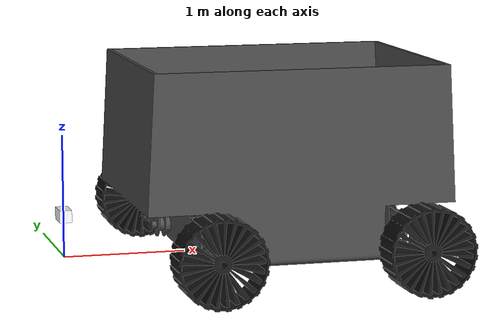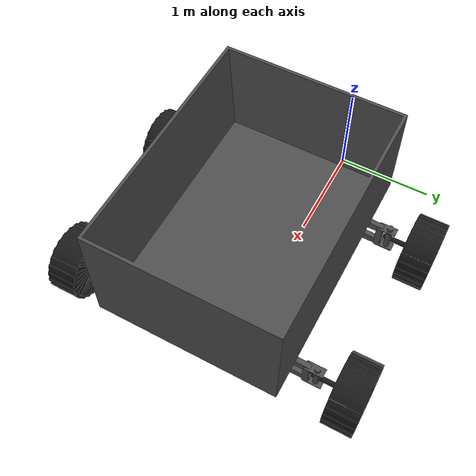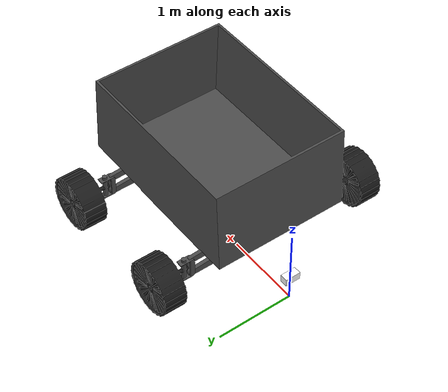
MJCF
<mujoco model="rover_v2">
  <compiler angle="radian" meshdir="assets/meshes/" />

  <option timestep="0.001" integrator="implicitfast" solver="Newton" iterations="100" tolerance="1e-10" gravity="0 0 -1.67" cone="elliptic" impratio="20">
    <flag energy="enable" contact="enable" />
  </option>

  <default>
    <default class="rover_v2">
      <geom friction="0.6" margin="0.001" condim="1" />
      <joint armature="0.01" damping="0.1" stiffness="0" frictionloss="0.05" />

      <default class="sus_joint">
        <joint range="-1.0472 1.0472" />
      </default>

      <default class="steer_joint">
        <joint range="-1.0472 1.0472" />
      </default>

      <default class="visual">
        <geom type="mesh" contype="0" conaffinity="0" group="2" />
      </default>

      <default class="collision">
        <geom group="3" priority="1" solimp="0.015 1 0.031" condim="3" friction="0.8 0.02 0.05" />
      </default>

      <default class="Tire">
        <geom group="4" priority="1" solref="0.01 1" solimp="0.015 1 0.031" condim="6" friction="0.8 0.02 0.22" />
      </default>
    </default>
  </default>

  <asset>
    <mesh name="TRUNK" file="TRUNK.STL" />
    <mesh name="FL_SUS_UNDER" file="FL_SUS_UNDER.STL" />
    <mesh name="FL_HUB" file="FL_HUB.STL" />
    <mesh name="FL_STR" file="FL_STR.STL" />
    <mesh name="FL_WHEEL" file="FL_WHEEL.STL" />
    <mesh name="FL_SUS_UP" file="FL_SUS_UP.STL" />
    <mesh name="FR_SUS_UNDER" file="FR_SUS_UNDER.STL" />
    <mesh name="FR_HUB" file="FR_HUB.STL" />
    <mesh name="FR_STR" file="FR_STR.STL" />
    <mesh name="FR_WHEEL" file="FR_WHEEL.STL" />
    <mesh name="FR_SUS_UP" file="FR_SUS_UP.STL" />
    <mesh name="RL_SUS_UNDER" file="RL_SUS_UNDER.STL" />
    <mesh name="RL_HUB" file="RL_HUB.STL" />
    <mesh name="RL_STR" file="RL_STR.STL" />
    <mesh name="RL_WHEEL" file="RL_WHEEL.STL" />
    <mesh name="RL_SUS_UP" file="RL_SUS_UP.STL" />
    <mesh name="RR_SUS_UNDER" file="RR_SUS_UNDER.STL" />
    <mesh name="RR_HUB" file="RR_HUB.STL" />
    <mesh name="RR_STR" file="RR_STR.STL" />
    <mesh name="RR_WHEEL" file="RR_WHEEL.STL" />
    <mesh name="RR_SUS_UP" file="RR_SUS_UP.STL" />
  </asset>

  <worldbody>
    <light diffuse=".5 .5 .5" pos="0 0 3" dir="0 0 -1" />

    <body name="TRUNK" pos="0 0 0.3" euler="0 0 1.5708">
      <inertial pos="0 0 0" mass="100" diaginertia="4.367 13.375 16.404" />
      <freejoint />
      <site type="box" name="imu" pos="0 0 0.05" size="0.1 0.05 0.05" rgba="1 1 1 1" />
      <geom class="visual" mesh="TRUNK" rgba="0.298039 0.298039 0.298039 1" />
      <geom type="box" pos="0 0 0" size="0.5 0.25 0.1" class="collision" />

      <body name="FL_SUS_UNDER" pos="0.32097 -2.525 -0.13701" quat="0.707105 0 0 -0.707108">
        <inertial pos="0 0.209098 -0.00697869" quat="0.718802 0.695214 0 0" mass="2.5" diaginertia="0.0533784 0.0518951 0.00252492" />
        <joint name="FL_SUS_UNDER_ACT" class="sus_joint" pos="0 0 0" axis="1 0 0" />
        <geom class="visual" rgba="0.298039 0.298039 0.298039 1" mesh="FL_SUS_UNDER" />
        <body name="FL_HUB" pos="0 0.44975 -0.015">
          <inertial pos="0 0.0352312 0.119628" quat="0.99949 -0.0319261 0 0" mass="2.5" diaginertia="0.035659 0.0312536 0.00911716" />
          <joint name="FL_HUB_ACT" pos="0 0 0" axis="1 0 0" />
          <site name="FL_HUB_UPPER_PIVOT" pos="0 0 0.22" size="0.008" rgba="0 1 0 0" />
          <geom class="visual" rgba="0.298039 0.298039 0.298039 1" mesh="FL_HUB" />
          <body name="FL_STR" pos="0 0.09524 0.11">
            <inertial pos="1.0875e-07 -2.60328e-08 -6.0306e-08" quat="0.70706 0 0 0.707153" mass="2.5" diaginertia="0.0169973 0.0169484 0.00114941" />
            <joint name="FL_STR_ACT" class="steer_joint" pos="0 0 0" axis="0 0 -1" />
            <geom class="visual" rgba="0.298039 0.298039 0.298039 1" mesh="FL_STR" />
            <body name="FL_WHEEL" pos="0 0.35 0">
              <inertial pos="0 -0.00337697 0" quat="0.707107 0 0 0.707107" mass="8.0" diaginertia="0.524969 0.31298 0.31298" />
              <joint name="FL_WHEEL_ACT" pos="0 0 0" axis="0 1 0" />
              <geom class="visual" rgba="0.1 0.1 0.1 1" mesh="FL_WHEEL" />
              <geom name="tire_FL" type="ellipsoid" pos="0 0 0" size="0.15 0.15 0.06" class="Tire" />
              <site type="cylinder" name="end_FL" pos="0 0 0" euler="1.5708 0 0" size="0.15 0.06" rgba="0 0 1 0" />
            </body>
          </body>
        </body>
      </body>
      <body name="FR_SUS_UNDER" pos="-0.77903 -2.525 -0.13701" quat="0.707105 0 0 -0.707108">
        <inertial pos="0 -0.209098 -0.00697928" quat="0.695211 0.718805 0 0" mass="2.5" diaginertia="0.0533784 0.0518951 0.00252492" />
        <joint name="FR_SUS_UNDER_ACT" class="sus_joint" pos="0 0 0" axis="-1 0 0" />
        <geom class="visual" rgba="0.298039 0.298039 0.298039 1" mesh="FR_SUS_UNDER" />
        <body name="FR_HUB" pos="0 -0.44975 -0.015022">
          <inertial pos="0 -0.0352312 0.119628" quat="0.99949 0.0319261 0 0" mass="2.5" diaginertia="0.035659 0.0312536 0.00911716" />
          <joint name="FR_HUB_ACT" pos="0 0 0" axis="1 0 0" />
          <site name="FR_HUB_UPPER_PIVOT" pos="0 0 0.22" size="0.008" rgba="0 1 0 0" />
          <geom class="visual" rgba="0.298039 0.298039 0.298039 1" mesh="FR_HUB" />
          <body name="FR_STR" pos="0 -0.09524 0.11">
            <inertial pos="-1.0875e-07 2.60329e-08 -6.03058e-08" quat="0.70706 0 0 0.707153" mass="2.5" diaginertia="0.0169973 0.0169484 0.00114941" />
            <joint name="FR_STR_ACT" class="steer_joint" pos="0 0 0" axis="0 0 -1" />
            <geom class="visual" rgba="0.298039 0.298039 0.298039 1" mesh="FR_STR" />
            <body name="FR_WHEEL" pos="0 -0.35 0">
              <inertial pos="0 0.00337697 0" quat="0.707107 0 0 0.707107" mass="8.0" diaginertia="0.524969 0.31298 0.31298" />
              <joint name="FR_WHEEL_ACT" pos="0 0 0" axis="0 1 0" />
              <geom class="visual" rgba="0.1 0.1 0.1 1" mesh="FR_WHEEL" />
              <geom name="tire_FR" type="ellipsoid" pos="0 0 0" size="0.15 0.15 0.06" class="Tire" />
              <site type="cylinder" name="end_FR" pos="0 0 0" euler="1.5708 0 0" size="0.15 0.06" rgba="0 0 1 0" />
            </body>
          </body>
        </body>
      </body>
      <body name="RL_SUS_UNDER" pos="0.32097 -0.875 -0.13701" quat="0.707105 0 0 -0.707108">
        <inertial pos="0 0.209098 -0.00697869" quat="0.718802 0.695214 0 0" mass="2.5" diaginertia="0.0533784 0.0518951 0.00252492" />
        <joint name="RL_SUS_UNDER_ACT" class="sus_joint" pos="0 0 0" axis="1 0 0" />
        <geom class="visual" rgba="0.298039 0.298039 0.298039 1" mesh="RL_SUS_UNDER" />
        <body name="RL_HUB" pos="0 0.44975 -0.015">
          <inertial pos="0 0.0352312 0.119628" quat="0.99949 -0.0319261 0 0" mass="2.5" diaginertia="0.035659 0.0312536 0.00911716" />
          <joint name="RL_HUB_ACT" pos="0 0 0" axis="1 0 0" />
          <site name="RL_HUB_UPPER_PIVOT" pos="0 0 0.22" size="0.008" rgba="0 1 0 0" />
          <geom class="visual" rgba="0.298039 0.298039 0.298039 1" mesh="RL_HUB" />
          <body name="RL_STR" pos="0 0.09524 0.11">
            <inertial pos="-1.0875e-07 2.60328e-08 -6.0306e-08" quat="0.70706 0 0 0.707153" mass="2.5" diaginertia="0.0169973 0.0169484 0.00114941" />
            <joint name="RL_STR_ACT" class="steer_joint" pos="0 0 0" axis="0 0 -1" />
            <geom class="visual" rgba="0.298039 0.298039 0.298039 1" mesh="RL_STR" />
            <body name="RL_WHEEL" pos="0 0.35 0">
              <inertial pos="0 -0.00337697 0" quat="0.707107 0 0 0.707107" mass="8.0" diaginertia="0.524969 0.31298 0.31298" />
              <joint name="RL_WHEEL_ACT" pos="0 0 0" axis="0 1 0" />
              <geom class="visual" rgba="0.1 0.1 0.1 1" mesh="RL_WHEEL" />
              <geom name="tire_RL" type="ellipsoid" pos="0 0 0" size="0.15 0.15 0.06" class="Tire" />
              <site type="cylinder" name="end_RL" pos="0 0 0" euler="1.5708 0 0" size="0.15 0.06" rgba="0 0 1 0" />
            </body>
          </body>
        </body>
      </body>
      <body name="RR_SUS_UNDER" pos="-0.77903 -0.875 -0.13701" quat="0.707105 0 0 -0.707108">
        <inertial pos="0 -0.209098 -0.00697928" quat="0.695211 0.718805 0 0" mass="2.5" diaginertia="0.0533784 0.0518951 0.00252492" />
        <joint name="RR_SUS_UNDER_ACT" class="sus_joint" pos="0 0 0" axis="-1 0 0" />
        <geom class="visual" rgba="0.298039 0.298039 0.298039 1" mesh="RR_SUS_UNDER" />
        <body name="RR_HUB" pos="0 -0.44975 -0.015022">
          <inertial pos="0 -0.0352312 0.119628" quat="0.99949 0.0319261 0 0" mass="2.5" diaginertia="0.035659 0.0312536 0.00911716" />
          <joint name="RR_HUB_ACT" pos="0 0 0" axis="1 0 0" />
          <site name="RR_HUB_UPPER_PIVOT" pos="0 0 0.22" size="0.008" rgba="0 1 0 0" />
          <geom class="visual" rgba="0.298039 0.298039 0.298039 1" mesh="RR_HUB" />
          <body name="RR_STR" pos="0 -0.09524 0.11">
            <inertial pos="1.0875e-07 -2.60328e-08 -6.0306e-08" quat="0.70706 0 0 0.707153" mass="2.5" diaginertia="0.0169973 0.0169484 0.00114941" />
            <joint name="RR_STR_ACT" class="steer_joint" pos="0 0 0" axis="0 0 -1" />
            <geom class="visual" rgba="0.298039 0.298039 0.298039 1" mesh="RR_STR" />
            <body name="RR_WHEEL" pos="0 -0.35 0">
              <inertial pos="0 0.00337697 0" quat="0.707107 0 0 0.707107" mass="8.0" diaginertia="0.524969 0.31298 0.31298" />
              <joint name="RR_WHEEL_ACT" pos="0 0 0" axis="0 1 0" />
              <geom class="visual" rgba="0.1 0.1 0.1 1" mesh="RR_WHEEL" />
              <geom name="tire_RR" type="ellipsoid" pos="0 0 0" size="0.15 0.15 0.06" class="Tire" />
              <site type="cylinder" name="end_RR" pos="0 0 0" euler="1.5708 0 0" size="0.15 0.06" rgba="0 0 1 0" />
            </body>
          </body>
        </body>
      </body>
      <!-- Upper arms are placed after the four lower chains so the first 16 hinge
           coordinates keep the legacy [suspension, hub, steer, drive] ordering. -->
      <body name="FL_SUS_UP" pos="0.32097 -2.525 0.082989" quat="0.707105 0 0 -0.707108">
        <inertial pos="0 0.209098 -0.00696892" quat="0.718788 0.695229 0 0" mass="2.5" diaginertia="0.0533784 0.0518951 0.00252492" />
        <joint name="FL_SUS_UP_ACT" class="sus_joint" pos="0 0 0" axis="1 0 0" />
        <site name="FL_UPPER_LINK_END" pos="0 0.44975 -0.015" size="0.008" rgba="0 1 0 0" />
        <geom class="visual" rgba="0.298039 0.298039 0.298039 1" mesh="FL_SUS_UP" />
      </body>

      <body name="FR_SUS_UP" pos="-0.77903 -2.525 0.082989" quat="0.499998 0.5 -0.500002 -0.5">
        <inertial pos="0 -0.00698906 0.209097" quat="0.99986 0.0167041 0 0" mass="2.5" diaginertia="0.0533784 0.0518951 0.00252492" />
        <joint name="FR_SUS_UP_ACT" class="sus_joint" pos="0 0 0" axis="-1 0 0" />
        <site name="FR_UPPER_LINK_END" pos="0 -0.015022 0.44975" size="0.008" rgba="0 1 0 0" />
        <geom class="visual" rgba="0.298039 0.298039 0.298039 1" mesh="FR_SUS_UP" />
      </body>

      <body name="RL_SUS_UP" pos="0.32097 -0.875 0.082989" quat="0.707105 0 0 -0.707108">
        <inertial pos="0 0.209098 -0.00696892" quat="0.718788 0.695229 0 0" mass="2.5" diaginertia="0.0533784 0.0518951 0.00252492" />
        <joint name="RL_SUS_UP_ACT" class="sus_joint" pos="0 0 0" axis="1 0 0" />
        <site name="RL_UPPER_LINK_END" pos="0 0.44975 -0.015" size="0.008" rgba="0 1 0 0" />
        <geom class="visual" rgba="0.298039 0.298039 0.298039 1" mesh="RL_SUS_UP" />
      </body>

      <body name="RR_SUS_UP" pos="-0.77903 -0.875 0.082989" quat="0.707105 0 0 -0.707108">
        <inertial pos="0 -0.209097 -0.00698906" quat="0.695197 0.71882 0 0" mass="2.5" diaginertia="0.0533784 0.0518951 0.00252492" />
        <joint name="RR_SUS_UP_ACT" class="sus_joint" pos="0 0 0" axis="-1 0 0" />
        <site name="RR_UPPER_LINK_END" pos="0 -0.44975 -0.015022" size="0.008" rgba="0 1 0 0" />
        <geom class="visual" rgba="0.298039 0.298039 0.298039 1" mesh="RR_SUS_UP" />
      </body>

    </body>
  </worldbody>

  <equality>
    <connect name="FL_FOUR_BAR" site1="FL_UPPER_LINK_END" site2="FL_HUB_UPPER_PIVOT" />
    <connect name="FR_FOUR_BAR" site1="FR_UPPER_LINK_END" site2="FR_HUB_UPPER_PIVOT" />
    <connect name="RL_FOUR_BAR" site1="RL_UPPER_LINK_END" site2="RL_HUB_UPPER_PIVOT" />
    <connect name="RR_FOUR_BAR" site1="RR_UPPER_LINK_END" site2="RR_HUB_UPPER_PIVOT" />
  </equality>

  <actuator>
    <motor name="FL_sus_motor" joint="FL_SUS_UNDER_ACT" gear="1" ctrlrange="-100 100" />
    <motor name="FL_cover_motor" joint="FL_HUB_ACT" gear="1" ctrlrange="-100 100" />
    <motor name="FL_steer_motor" joint="FL_STR_ACT" gear="1" ctrlrange="-100 100" />
    <motor name="FL_drive_motor" joint="FL_WHEEL_ACT" gear="1" ctrlrange="-100 100" />
    <motor name="FR_sus_motor" joint="FR_SUS_UNDER_ACT" gear="1" ctrlrange="-100 100" />
    <motor name="FR_cover_motor" joint="FR_HUB_ACT" gear="1" ctrlrange="-100 100" />
    <motor name="FR_steer_motor" joint="FR_STR_ACT" gear="1" ctrlrange="-100 100" />
    <motor name="FR_drive_motor" joint="FR_WHEEL_ACT" gear="1" ctrlrange="-100 100" />
    <motor name="RL_sus_motor" joint="RL_SUS_UNDER_ACT" gear="1" ctrlrange="-100 100" />
    <motor name="RL_cover_motor" joint="RL_HUB_ACT" gear="1" ctrlrange="-100 100" />
    <motor name="RL_steer_motor" joint="RL_STR_ACT" gear="1" ctrlrange="-100 100" />
    <motor name="RL_drive_motor" joint="RL_WHEEL_ACT" gear="1" ctrlrange="-100 100" />
    <motor name="RR_sus_motor" joint="RR_SUS_UNDER_ACT" gear="1" ctrlrange="-100 100" />
    <motor name="RR_cover_motor" joint="RR_HUB_ACT" gear="1" ctrlrange="-100 100" />
    <motor name="RR_steer_motor" joint="RR_STR_ACT" gear="1" ctrlrange="-100 100" />
    <motor name="RR_drive_motor" joint="RR_WHEEL_ACT" gear="1" ctrlrange="-100 100" />
  </actuator>

  <sensor>
    <accelerometer site="imu" name="imu_acc" noise="0.0" />

    <gyro site="imu" name="imu_gyro" noise="0.0" />

    <framelinvel name="trunk_vel" objtype="site" objname="imu" />

    <frameangvel name="trunk_angvel" objtype="site" objname="imu" />

    <framepos name="trunk_pos" objtype="site" objname="imu" />

    <framequat name="trunk_ang" objtype="site" objname="imu" />

    <jointpos joint="FL_SUS_UNDER_ACT" name="ENC_FL_sus" noise="0.0" />
    <jointpos joint="FL_STR_ACT" name="ENC_FL_steer" noise="0.0" />
    <jointpos joint="FL_WHEEL_ACT" name="ENC_FL_drive" noise="0.0" />

    <jointpos joint="FR_SUS_UNDER_ACT" name="ENC_FR_sus" noise="0.0" />
    <jointpos joint="FR_STR_ACT" name="ENC_FR_steer" noise="0.0" />
    <jointpos joint="FR_WHEEL_ACT" name="ENC_FR_drive" noise="0.0" />

    <jointpos joint="RL_SUS_UNDER_ACT" name="ENC_RL_sus" noise="0.0" />
    <jointpos joint="RL_STR_ACT" name="ENC_RL_steer" noise="0.0" />
    <jointpos joint="RL_WHEEL_ACT" name="ENC_RL_drive" noise="0.0" />

    <jointpos joint="RR_SUS_UNDER_ACT" name="ENC_RR_sus" noise="0.0" />
    <jointpos joint="RR_STR_ACT" name="ENC_RR_steer" noise="0.0" />
    <jointpos joint="RR_WHEEL_ACT" name="ENC_RR_drive" noise="0.0" />

    <touch name="touch_FL" site="end_FL" />

    <force name="grf_FL" site="end_FL" />

    <touch name="touch_FR" site="end_FR" />

    <force name="grf_FR" site="end_FR" />

    <touch name="touch_RL" site="end_RL" />

    <force name="grf_RL" site="end_RL" />

    <touch name="touch_RR" site="end_RR" />

    <force name="grf_RR" site="end_RR" />

    <torque name="torque_sensor_FL" site="end_FL" />
    <torque name="torque_sensor_FR" site="end_FR" />
    <torque name="torque_sensor_RL" site="end_RL" />
    <torque name="torque_sensor_RR" site="end_RR" />

  </sensor>

  <keyframe>
    <key name="home" qpos="0 0 0.7  0.7071 0 0 0.7071  0 0 0 0 0  0 0 0 0 0  0 0 0 0 0  0 0 0 0 0" />
  </keyframe>

</mujoco>
